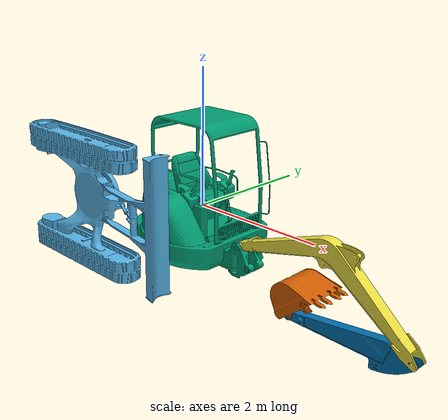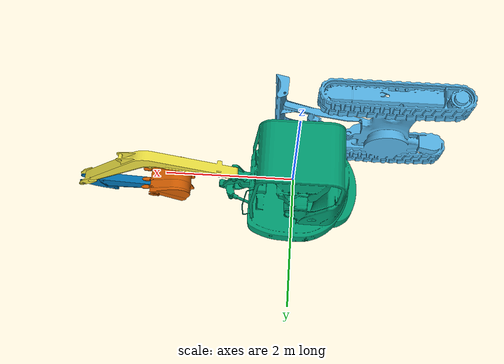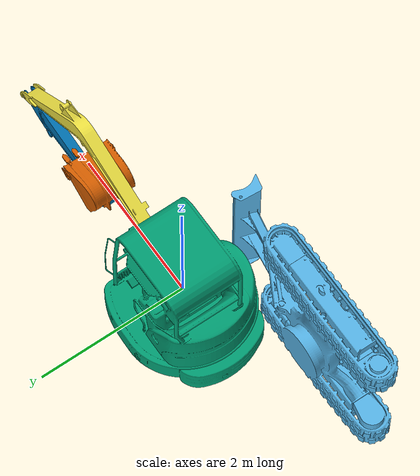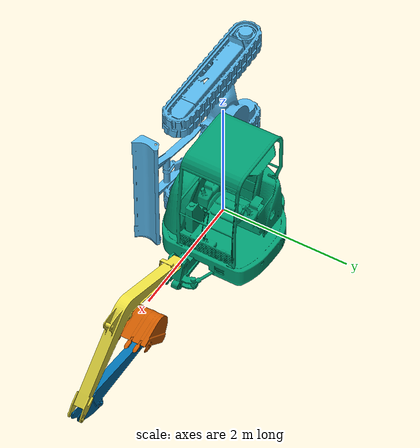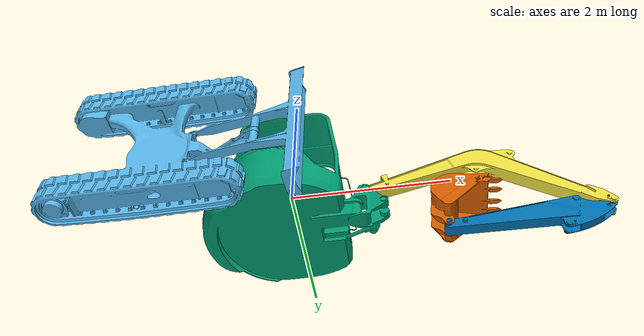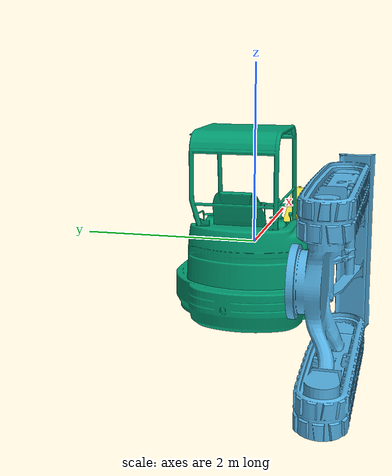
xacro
<?xml version="1.0"?>
<robot xmlns:xacro="http://www.ros.org/wiki/xacro" name="excavator">
    <xacro:arg name="initial_positions_file" default="initial_positions.yaml" />

    <!-- Import excavator urdf file -->
    <xacro:include filename="$(find excavator_hardware_interface)/excavator_description/urdf/robot/excavator.urdf.xacro" />

    <!-- Import control_xacro -->
    <xacro:include filename="excavator.ros2_control.xacro" />

    <xacro:excavator_ros2_control name="FakeSystem" initial_positions_file="$(arg initial_positions_file)"/>

</robot>

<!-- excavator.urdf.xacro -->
<robot xmlns:xacro="http://www.ros.org/wiki/xacro" name="excavator">
    <xacro:arg name="add_world" default="true"/>
    <xacro:arg name="base_link" default="base_link"/>
    <xacro:arg name="use_lidar" default="false"/>
    <xacro:arg name="use_gazebo" default="false"/>

    <xacro:if value="$(arg add_world)">
        <link name="world"/>
        <joint name="virtual_joint" type="fixed">
            <parent link="world"/>
            <child link="$(arg base_link)"/>
            <origin xyz="0 0 0" rpy="0 0 0"/>
        </joint>
    </xacro:if>

    <xacro:include filename="$(find excavator_hardware_interface)/excavator_description/urdf/mech/excavator_mech.urdf.xacro"/>
    <xacro:excavator
            base_link="$(arg base_link)">
    </xacro:excavator>

    <xacro:include filename="$(find excavator_hardware_interface)/excavator_description/urdf/control/gazebo_sim_ros2_control.urdf.xacro" />
    <xacro:load_gazebo_sim_ros2_control_plugin
            use_gazebo="$(arg use_gazebo)"/>

    <xacro:include filename="$(find excavator_hardware_interface)/excavator_description/urdf/control/excavator_ros2_control.urdf.xacro" />
    <xacro:excavator_ros2_control
            use_gazebo="$(arg use_gazebo)"/>

    <xacro:include filename="$(find excavator_hardware_interface)/excavator_description/urdf/sensors/lidar.urdf.xacro"/>
    <xacro:lidar
        parent_link="cabin_link"
        use_lidar="arg use_lidar"
        use_gazebo="arg use_gazebo">
        <origin xyz="0 0 1.5" rpy="0 0 0"/>
    </xacro:lidar>

</robot>

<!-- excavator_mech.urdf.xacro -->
<!-- Basic differential drive mobile base -->
<robot xmlns:xacro="http://www.ros.org/wiki/xacro">

  <xacro:property name="joint_effort" value="56.0"/>
  <xacro:property name="joint_velocity" value="2.792527"/>
  <xacro:property name="joint_damping" value="0.0"/>
  <xacro:property name="joint_friction" value="0.0"/>

  <xacro:property name="base_mass" value="0.12"/>
  <xacro:property name="cabin_mass" value="0.19"/>
  <xacro:property name="arm1_mass" value="0.16"/>
  <xacro:property name="arm2_mass" value="0.124"/>
  <xacro:property name="ladle_mass" value="0.11"/>

  <xacro:macro name="link_inertial" params="mass ixx iyy izz">
    <inertial>
      <origin xyz="0 0 0.0" rpy="0 0 0"/>
      <mass value="${mass}"/>
      <inertia
              ixx="${ixx}" ixy="0.0" ixz="0.0"
              iyy="${iyy}" iyz="0.0"
              izz="${izz}"/>
    </inertial>
  </xacro:macro>

  <xacro:macro name="material_visual" params="ref_link ambient diffuse specular">
    <gazebo reference="${ref_link}">
      <visual>
        <material>
          <ambient>${ambient}</ambient>
          <diffuse>${diffuse}</diffuse>
          <specular>${specular}</specular>
        </material>
      </visual>
    </gazebo>
  </xacro:macro>

  <xacro:macro name="excavator" params="base_link">

    <!-- Robot Base -->
    <link name="base_link">
      <visual>
        <geometry>
          <mesh filename="file://$(find excavator_hardware_interface)/excavator_description/meshes/visual/Down.dae"/>
        </geometry>
      </visual>
      <collision>
        <geometry>
          <mesh filename="file://$(find excavator_hardware_interface)/excavator_description/meshes/collision/Down.stl"/>
        </geometry>
      </collision>
      <xacro:link_inertial mass="${base_mass}" ixx="0.000148" iyy="0.000148" izz="0.000096"/>
    </link>

    <link name="cabin_link">
      <visual>
        <geometry>
          <mesh filename="file://$(find excavator_hardware_interface)/excavator_description/meshes/visual/Cabin.dae"/>
        </geometry>
      </visual>
      <collision>
        <geometry>
          <mesh filename="file://$(find excavator_hardware_interface)/excavator_description/meshes/collision/Cabin.stl"/>
        </geometry>
      </collision>
      <xacro:link_inertial mass="${cabin_mass}" ixx="0.000148" iyy="0.000148" izz="0.000096"/>
    </link>

    <link name="arm_one_link">
      <visual>
        <geometry>
          <mesh filename="file://$(find excavator_hardware_interface)/excavator_description/meshes/visual/Arm1.dae"/>
        </geometry>
      </visual>
      <collision>
        <geometry>
          <mesh filename="file://$(find excavator_hardware_interface)/excavator_description/meshes/collision/Arm1.stl"/>
        </geometry>
      </collision>
      <xacro:link_inertial mass="${arm1_mass}" ixx="0.000148" iyy="0.000148" izz="0.000096"/>
    </link>

    <link name="arm_two_link">
      <visual>
        <geometry>
          <mesh filename="file://$(find excavator_hardware_interface)/excavator_description/meshes/visual/Arm2.dae"/>
        </geometry>
      </visual>
      <collision>
        <geometry>
          <mesh filename="file://$(find excavator_hardware_interface)/excavator_description/meshes/collision/Arm2.stl"/>
        </geometry>
      </collision>
      <xacro:link_inertial mass="${arm2_mass}" ixx="0.000148" iyy="0.000148" izz="0.000096"/>
    </link>

    <link name="ladle_link">
      <visual>
        <geometry>
          <mesh filename="file://$(find excavator_hardware_interface)/excavator_description/meshes/visual/Ladle2.dae"/>
        </geometry>
      </visual>
      <collision>
        <geometry>
          <mesh filename="file://$(find excavator_hardware_interface)/excavator_description/meshes/collision/Ladle2.stl"/>
        </geometry>
      </collision>
      <xacro:link_inertial mass="${ladle_mass}" ixx="0.000148" iyy="0.000148" izz="0.000096"/>
    </link>

    <joint name="cabin_joint" type="revolute">
      <parent link="base_link"/>
      <child link="cabin_link"/>
      <origin xyz="0.0 0.0 0.0" rpy="0 0 0"/>
      <limit effort="${joint_effort}" lower="-1.56" upper="1.56" velocity="${joint_velocity}"/>

      <axis xyz="0 0 1"/>
    </joint>

    <joint name="arm_one_joint" type="revolute">
      <parent link="cabin_link"/>
      <child link="arm_one_link"/>
      <origin xyz="0.95 -0.17 -0.28" rpy="0 0 0"/>
      <limit effort="${joint_effort}" lower="-1.6" upper="0.0" velocity="${joint_velocity}"/>
      <dynamics damping="${joint_damping}" friction="${joint_friction}"/>
      <axis xyz="0 1 0"/>
    </joint>

    <joint name="arm_two_joint" type="revolute">
      <parent link="arm_one_link"/>
      <child link="arm_two_link"/>
      <origin xyz="2.66 0.0 -0.62" rpy="0 0 0"/>
      <limit effort="${joint_effort}" lower="-1.6" upper="0.0" velocity="${joint_velocity}"/>
      <dynamics damping="${joint_damping}" friction="${joint_friction}"/>
      <axis xyz="0 1 0"/>
    </joint>

    <joint name="ladle_joint" type="revolute">
      <parent link="arm_two_link"/>
      <child link="ladle_link"/>
      <origin xyz="-1.755 0.0 -0.065" rpy="0 0 0"/>
      <limit effort="${joint_effort}" lower="-1.6" upper="0.0" velocity="${joint_velocity}"/>
      <dynamics damping="${joint_damping}" friction="${joint_friction}"/>
      <axis xyz="0 1 0"/>
    </joint>

    <link name="tool0"/>

    <joint name="joint_tool0" type="fixed">
      <parent link="ladle_link"/>
      <child link="tool0"/>
      <origin rpy="0 0 0" xyz="0 0 0"/>
    </joint>

    <xacro:material_visual ref_link="base_link" ambient="0.5 0.5 0.5 1" diffuse="0.5 0.5 0.5 1" specular="0.5 0.5 0.5 1"/>
    <xacro:material_visual ref_link="cabin_link" ambient="1 1 1 1" diffuse="1 1 1 1" specular="1 1 1 1"/>
    <xacro:material_visual ref_link="arm1_link" ambient="1 1 1 1" diffuse="1 1 1 1" specular="1 1 1 1"/>
    <xacro:material_visual ref_link="arm2_link" ambient="1 1 1 1" diffuse="1 1 1 1" specular="1 1 1 1"/>
    <xacro:material_visual ref_link="ladle_link" ambient="1 1 1 1" diffuse="1 1 1 1" specular="1 1 1 1"/>

  </xacro:macro>

</robot>
